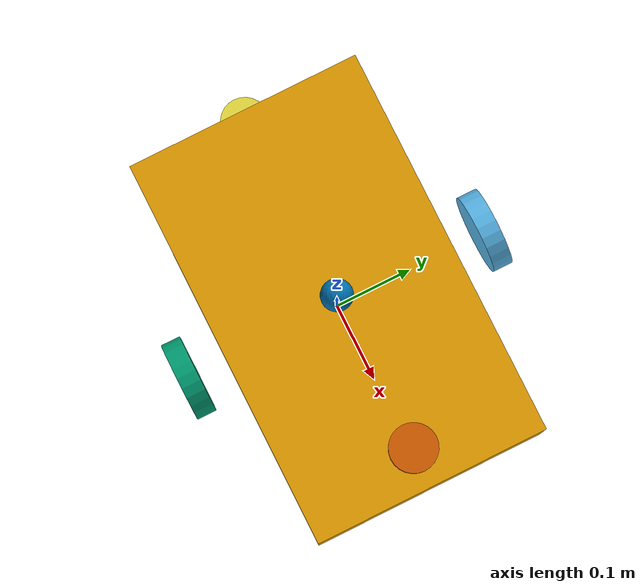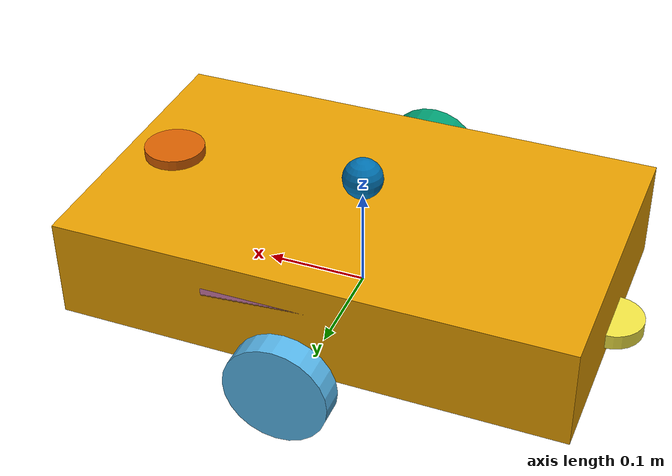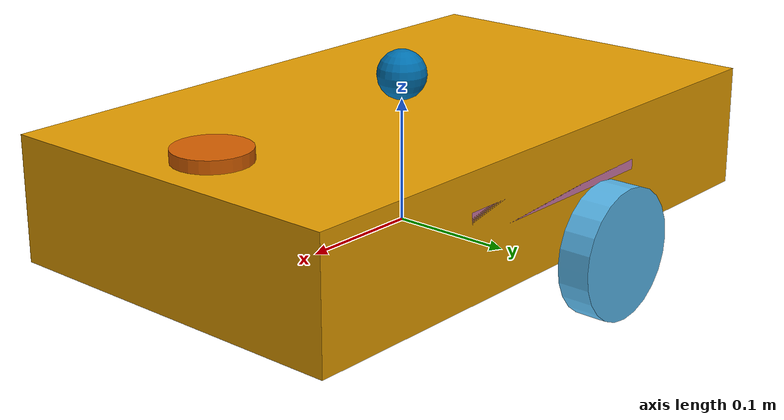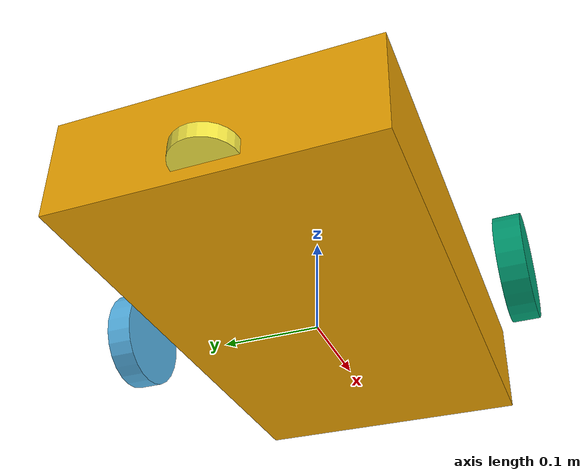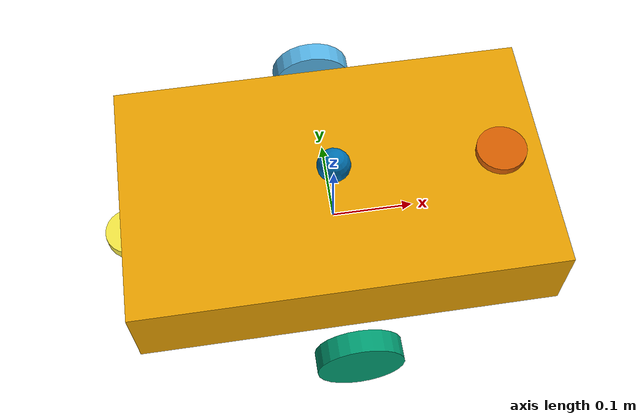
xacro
<?xml version="1.0"?>
<robot xmlns:xacro="http://www.ros.org/wiki/xacro" name="amr1">
  <xacro:include filename="$(find robots_description)/urdf/amr_base_common.xacro"/>

  <!-- customize AMR-1 -->
  <xacro:property name="wheel_radius" value="0.05"/>
  <xacro:property name="wheel_width"  value="0.025"/>
  <xacro:property name="wheel_base"   value="0.4"/>
  <xacro:property name="chassis_length" value="0.5"/>
  <xacro:property name="chassis_width"  value="0.3"/>
  <xacro:property name="chassis_height" value="0.10"/>
  <xacro:property name="mass_chassis" value="100.0"/>

  <!-- base_link (chassis) -->
  <link name="base_link">
    <visual>
      <origin xyz="0 0 ${chassis_height/2}" rpy="0 0 0"/>
      <geometry>
        <box size="${chassis_length} ${chassis_width} ${chassis_height}"/>
      </geometry>
    </visual>
    <collision>
      <origin xyz="0 0 ${chassis_height/2}" rpy="0 0 0"/>
      <geometry>
        <box size="${chassis_length} ${chassis_width} ${chassis_height}"/>
      </geometry>
    </collision>
    <xacro:inertial_box m="${mass_chassis}" lx="${chassis_length}" ly="${chassis_width}" lz="${chassis_height}"/>
  </link>

  <!-- left & right wheels -->
  <xacro:wheel name="wheel_left"  radius="${wheel_radius}" width="${wheel_width}" mass="1.0"/>
  <xacro:wheel name="wheel_right" radius="${wheel_radius}" width="${wheel_width}" mass="1.0"/>

  <!-- joints for wheels (continuous for simulation) -->
  <joint name="wheel_left_joint" type="continuous">
    <parent link="base_link"/>
    <child link="wheel_left"/>
    <origin xyz="0 ${wheel_base/2} ${chassis_height/4}" rpy="0 0 0"/>
    <axis xyz="0 1 0"/>
  </joint>

  <joint name="wheel_right_joint" type="continuous">
    <parent link="base_link"/>
    <child link="wheel_right"/>
    <origin xyz="0 ${-wheel_base/2} ${chassis_height/4}" rpy="0 0 0"/>
    <axis xyz="0 1 0"/>
  </joint>

  <!-- caster -->
  <xacro:caster name="caster_link" radius="${caster_radius}" mass="0.3"/>
  <joint name="caster_joint" type="fixed">
    <parent link="base_link"/>
    <child link="caster_link"/>
    <origin xyz="${-chassis_length/2} 0 ${0.02}" rpy="0 0 0"/>
  </joint>

  <!-- IMU link -->
  <link name="imu_link">
    <origin xyz="0 0 ${chassis_height + 0.02}" rpy="0 0 0"/>
    <visual><geometry><sphere radius="0.02"/></geometry></visual>
    <xacro:inertial_box m="0.05" lx="0.04" ly="0.02" lz="0.02"/>
  </link>
  <joint name="imu_joint" type="fixed">
    <parent link="base_link"/>
    <child link="imu_link"/>
    <origin xyz="0 0 ${chassis_height + 0.02}" rpy="0 0 0"/>
  </joint>

  <!-- LiDAR link (2D) -->
  <link name="lidar_link">
    <visual><geometry><cylinder radius="0.03" length="0.02"/></geometry></visual>
    <xacro:inertial_box m="0.05" lx="0.06" ly="0.06" lz="0.02"/>
  </link>
  <joint name="lidar_joint" type="fixed">
    <parent link="base_link"/>
    <child link="lidar_link"/>
    <origin xyz="${chassis_length/2 - 0.05} 0 ${chassis_height/2 + 0.05}" rpy="0 0 0"/>
  </joint>

  <!-- payload mount -->
  <link name="payload_mount">
    <visual><geometry><box size="0.20 0.20 0.02"/></geometry></visual>
    <xacro:inertial_box m="0.2" lx="0.2" ly="0.2" lz="0.02"/>
  </link>
  <joint name="payload_mount_joint" type="fixed">
    <parent link="base_link"/>
    <child link="payload_mount"/>
    <origin xyz="0 ${chassis_width/2 - 0.1} ${chassis_height/2 + 0.01}" rpy="0 0 0"/>
  </joint>

  <!-- joint_state and robot_state_publisher friendly root -->
  <gazebo reference="base_link"/>
</robot>

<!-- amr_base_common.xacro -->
<robot xmlns:xacro="http://www.ros.org/wiki/xacro" name="amr_common">

  <!-- Basic parameters you can override when including -->
  <xacro:property name="wheel_radius" value="0.08"/>
  <xacro:property name="wheel_width"  value="0.04"/>
  <xacro:property name="wheel_base"   value="0.40"/> <!-- distance between wheels -->
  <xacro:property name="chassis_length" value="0.55"/>
  <xacro:property name="chassis_width"  value="0.40"/>
  <xacro:property name="chassis_height" value="0.18"/>
  <xacro:property name="caster_radius" value="0.03"/>
  <xacro:property name="mass_chassis" value="12.0"/>

  <!-- inertial helper -->
  <xacro:macro name="inertial_box" params="m lx ly lz">
    <inertial>
      <origin xyz="0 0 0" rpy="0 0 0"/>
      <mass value="${m}"/>
      <!-- approximate inertia for box -->
      <inertia ixx="${(1.0/12.0)*m*(ly*ly + lz*lz)}"
               ixy="0.0" ixz="0.0"
               iyy="${(1.0/12.0)*m*(lx*lx + lz*lz)}"
               iyz="0.0"
               izz="${(1.0/12.0)*m*(lx*lx + ly*ly)}"/>
    </inertial>
  </xacro:macro>

  <!-- Wheel macro -->
  <xacro:macro name="wheel" params="name radius width mass">
    <link name="${name}">
      <visual>
        <origin xyz="0 0 0" rpy="1.57 0 0"/>
        <geometry>
          <cylinder radius="${radius}" length="${width}"/>
        </geometry>
      </visual>
      <collision>
        <origin xyz="0 0 0" rpy="1.57 0 0"/>
        <geometry>
          <cylinder radius="${radius}" length="${width}"/>
        </geometry>
      </collision>
      <xacro:inertial_box m="${mass}" lx="${radius*2}" ly="${radius*2}" lz="${width}"/>
    </link>
  </xacro:macro>

  <!-- Simple caster wheel -->
  <xacro:macro name="caster" params="name radius mass">
    <link name="${name}">
      <visual>
        <geometry>
          <cylinder radius="${radius}" length="${radius*0.5}"/>
        </geometry>
      </visual>
      <collision>
        <geometry>
          <cylinder radius="${radius}" length="${radius*0.5}"/>
        </geometry>
      </collision>
      <xacro:inertial_box m="${mass}" lx="${radius*2}" ly="${radius*2}" lz="${radius*0.5}"/>
    </link>
  </xacro:macro>

</robot>
